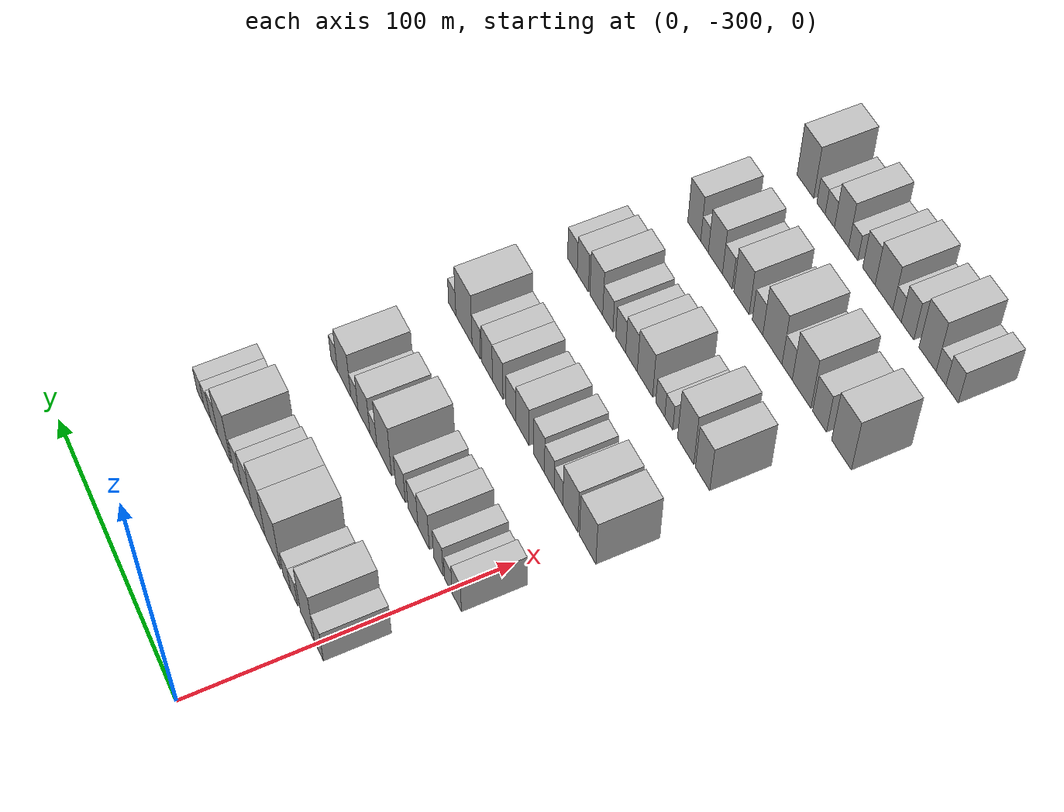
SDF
<sdf version="1.6">
 <world name="default">
  <model name="building_37">
   <static>1</static>
   <pose>50.0000 -302.4055 0 0.000000 0.000000 0.000000</pose>
   <link name="link">
    <pose>0 0 7.50 0 0 0</pose>
    <collision name="collision"><geometry><box><size>20.0000 6.4722 15.0000</size></box></geometry></collision>
    <visual name="visual">
     <cast_shadows>0</cast_shadows>
     <geometry><box><size>20.0000 6.4722 15.0000</size></box></geometry>
     <material>
      <script>
       <uri>model://HANNAS_wall/materials/scripts</uri>
       <uri>model://HANNAS_wall/materials/textures</uri>
       <name>vrc/HANNAS_wall</name>
      </script>
     </material>
    </visual>
   </link>
  </model>
  <model name="building_38">
   <static>1</static>
   <pose>50.0000 -294.0786 0 0.000000 0.000000 0.000000</pose>
   <link name="link">
    <pose>0 0 12.00 0 0 0</pose>
    <collision name="collision"><geometry><box><size>20.0000 10.1815 24.0000</size></box></geometry></collision>
    <visual name="visual">
     <cast_shadows>0</cast_shadows>
     <geometry><box><size>20.0000 10.1815 24.0000</size></box></geometry>
     <material>
      <script>
       <uri>model://HANNAS_wall/materials/scripts</uri>
       <uri>model://HANNAS_wall/materials/textures</uri>
       <name>vrc/HANNAS_wall</name>
      </script>
     </material>
    </visual>
   </link>
  </model>
  <model name="building_39">
   <static>1</static>
   <pose>50.0000 -284.3608 0 0.000000 0.000000 0.000000</pose>
   <link name="link">
    <pose>0 0 6.00 0 0 0</pose>
    <collision name="collision"><geometry><box><size>20.0000 5.2541 12.0000</size></box></geometry></collision>
    <visual name="visual">
     <cast_shadows>0</cast_shadows>
     <geometry><box><size>20.0000 5.2541 12.0000</size></box></geometry>
     <material>
      <script>
       <uri>model://HANNAS_wall/materials/scripts</uri>
       <uri>model://HANNAS_wall/materials/textures</uri>
       <name>vrc/HANNAS_wall</name>
      </script>
     </material>
    </visual>
   </link>
  </model>
  <model name="building_40">
   <static>1</static>
   <pose>50.0000 -278.8826 0 0.000000 0.000000 0.000000</pose>
   <link name="link">
    <pose>0 0 6.00 0 0 0</pose>
    <collision name="collision"><geometry><box><size>20.0000 5.7023 12.0000</size></box></geometry></collision>
    <visual name="visual">
     <cast_shadows>0</cast_shadows>
     <geometry><box><size>20.0000 5.7023 12.0000</size></box></geometry>
     <material>
      <script>
       <uri>model://HANNAS_wall/materials/scripts</uri>
       <uri>model://HANNAS_wall/materials/textures</uri>
       <name>vrc/HANNAS_wall</name>
      </script>
     </material>
    </visual>
   </link>
  </model>
  <model name="building_41">
   <static>1</static>
   <pose>50.0000 -268.1659 0 0.000000 0.000000 0.000000</pose>
   <link name="link">
    <pose>0 0 12.00 0 0 0</pose>
    <collision name="collision"><geometry><box><size>20.0000 11.7311 24.0000</size></box></geometry></collision>
    <visual name="visual">
     <cast_shadows>0</cast_shadows>
     <geometry><box><size>20.0000 11.7311 24.0000</size></box></geometry>
     <material>
      <script>
       <uri>model://HANNAS_wall/materials/scripts</uri>
       <uri>model://HANNAS_wall/materials/textures</uri>
       <name>vrc/HANNAS_wall</name>
      </script>
     </material>
    </visual>
   </link>
  </model>
  <model name="building_42">
   <static>1</static>
   <pose>50.0000 -257.3225 0 0.000000 0.000000 0.000000</pose>
   <link name="link">
    <pose>0 0 12.00 0 0 0</pose>
    <collision name="collision"><geometry><box><size>20.0000 9.9557 24.0000</size></box></geometry></collision>
    <visual name="visual">
     <cast_shadows>0</cast_shadows>
     <geometry><box><size>20.0000 9.9557 24.0000</size></box></geometry>
     <material>
      <script>
       <uri>model://HANNAS_wall/materials/scripts</uri>
       <uri>model://HANNAS_wall/materials/textures</uri>
       <name>vrc/HANNAS_wall</name>
      </script>
     </material>
    </visual>
   </link>
  </model>
  <model name="building_43">
   <static>1</static>
   <pose>50.0000 -248.1302 0 0.000000 0.000000 0.000000</pose>
   <link name="link">
    <pose>0 0 9.00 0 0 0</pose>
    <collision name="collision"><geometry><box><size>20.0000 8.4289 18.0000</size></box></geometry></collision>
    <visual name="visual">
     <cast_shadows>0</cast_shadows>
     <geometry><box><size>20.0000 8.4289 18.0000</size></box></geometry>
     <material>
      <script>
       <uri>model://HANNAS_wall/materials/scripts</uri>
       <uri>model://HANNAS_wall/materials/textures</uri>
       <name>vrc/HANNAS_wall</name>
      </script>
     </material>
    </visual>
   </link>
  </model>
  <model name="building_44">
   <static>1</static>
   <pose>50.0000 -240.6113 0 0.000000 0.000000 0.000000</pose>
   <link name="link">
    <pose>0 0 7.50 0 0 0</pose>
    <collision name="collision"><geometry><box><size>20.0000 6.6089 15.0000</size></box></geometry></collision>
    <visual name="visual">
     <cast_shadows>0</cast_shadows>
     <geometry><box><size>20.0000 6.6089 15.0000</size></box></geometry>
     <material>
      <script>
       <uri>model://HANNAS_wall/materials/scripts</uri>
       <uri>model://HANNAS_wall/materials/textures</uri>
       <name>vrc/HANNAS_wall</name>
      </script>
     </material>
    </visual>
   </link>
  </model>
  <model name="building_45">
   <static>1</static>
   <pose>50.0000 -230.1553 0 0.000000 0.000000 0.000000</pose>
   <link name="link">
    <pose>0 0 12.00 0 0 0</pose>
    <collision name="collision"><geometry><box><size>20.0000 10.3031 24.0000</size></box></geometry></collision>
    <visual name="visual">
     <cast_shadows>0</cast_shadows>
     <geometry><box><size>20.0000 10.3031 24.0000</size></box></geometry>
     <material>
      <script>
       <uri>model://HANNAS_wall/materials/scripts</uri>
       <uri>model://HANNAS_wall/materials/textures</uri>
       <name>vrc/HANNAS_wall</name>
      </script>
     </material>
    </visual>
   </link>
  </model>
  <model name="building_46">
   <static>1</static>
   <pose>50.0000 -221.9413 0 0.000000 0.000000 0.000000</pose>
   <link name="link">
    <pose>0 0 7.50 0 0 0</pose>
    <collision name="collision"><geometry><box><size>20.0000 6.1249 15.0000</size></box></geometry></collision>
    <visual name="visual">
     <cast_shadows>0</cast_shadows>
     <geometry><box><size>20.0000 6.1249 15.0000</size></box></geometry>
     <material>
      <script>
       <uri>model://HANNAS_wall/materials/scripts</uri>
       <uri>model://HANNAS_wall/materials/textures</uri>
       <name>vrc/HANNAS_wall</name>
      </script>
     </material>
    </visual>
   </link>
  </model>
  <model name="building_47">
   <static>1</static>
   <pose>50.0000 -216.0075 0 0.000000 0.000000 0.000000</pose>
   <link name="link">
    <pose>0 0 6.00 0 0 0</pose>
    <collision name="collision"><geometry><box><size>20.0000 5.7428 12.0000</size></box></geometry></collision>
    <visual name="visual">
     <cast_shadows>0</cast_shadows>
     <geometry><box><size>20.0000 5.7428 12.0000</size></box></geometry>
     <material>
      <script>
       <uri>model://HANNAS_wall/materials/scripts</uri>
       <uri>model://HANNAS_wall/materials/textures</uri>
       <name>vrc/HANNAS_wall</name>
      </script>
     </material>
    </visual>
   </link>
  </model>
  <model name="building_48">
   <static>1</static>
   <pose>50.0000 -210.2760 0 0.000000 0.000000 0.000000</pose>
   <link name="link">
    <pose>0 0 6.00 0 0 0</pose>
    <collision name="collision"><geometry><box><size>20.0000 5.7203 12.0000</size></box></geometry></collision>
    <visual name="visual">
     <cast_shadows>0</cast_shadows>
     <geometry><box><size>20.0000 5.7203 12.0000</size></box></geometry>
     <material>
      <script>
       <uri>model://HANNAS_wall/materials/scripts</uri>
       <uri>model://HANNAS_wall/materials/textures</uri>
       <name>vrc/HANNAS_wall</name>
      </script>
     </material>
    </visual>
   </link>
  </model>
  <model name="building_177">
   <static>1</static>
   <pose>90.0000 -304.5822 0 0.000000 0.000000 0.000000</pose>
   <link name="link">
    <pose>0 0 7.50 0 0 0</pose>
    <collision name="collision"><geometry><box><size>20.0000 6.2522 15.0000</size></box></geometry></collision>
    <visual name="visual">
     <cast_shadows>0</cast_shadows>
     <geometry><box><size>20.0000 6.2522 15.0000</size></box></geometry>
     <material>
      <script>
       <uri>model://HANNAS_wall/materials/scripts</uri>
       <uri>model://HANNAS_wall/materials/textures</uri>
       <name>vrc/HANNAS_wall</name>
      </script>
     </material>
    </visual>
   </link>
  </model>
  <model name="building_178">
   <static>1</static>
   <pose>90.0000 -298.9187 0 0.000000 0.000000 0.000000</pose>
   <link name="link">
    <pose>0 0 6.00 0 0 0</pose>
    <collision name="collision"><geometry><box><size>20.0000 5.0749 12.0000</size></box></geometry></collision>
    <visual name="visual">
     <cast_shadows>0</cast_shadows>
     <geometry><box><size>20.0000 5.0749 12.0000</size></box></geometry>
     <material>
      <script>
       <uri>model://HANNAS_wall/materials/scripts</uri>
       <uri>model://HANNAS_wall/materials/textures</uri>
       <name>vrc/HANNAS_wall</name>
      </script>
     </material>
    </visual>
   </link>
  </model>
  <model name="building_179">
   <static>1</static>
   <pose>90.0000 -292.1251 0 0.000000 0.000000 0.000000</pose>
   <link name="link">
    <pose>0 0 7.50 0 0 0</pose>
    <collision name="collision"><geometry><box><size>20.0000 6.5124 15.0000</size></box></geometry></collision>
    <visual name="visual">
     <cast_shadows>0</cast_shadows>
     <geometry><box><size>20.0000 6.5124 15.0000</size></box></geometry>
     <material>
      <script>
       <uri>model://HANNAS_wall/materials/scripts</uri>
       <uri>model://HANNAS_wall/materials/textures</uri>
       <name>vrc/HANNAS_wall</name>
      </script>
     </material>
    </visual>
   </link>
  </model>
  <model name="building_180">
   <static>1</static>
   <pose>90.0000 -281.8949 0 0.000000 0.000000 0.000000</pose>
   <link name="link">
    <pose>0 0 9.00 0 0 0</pose>
    <collision name="collision"><geometry><box><size>20.0000 7.9479 18.0000</size></box></geometry></collision>
    <visual name="visual">
     <cast_shadows>0</cast_shadows>
     <geometry><box><size>20.0000 7.9479 18.0000</size></box></geometry>
     <material>
      <script>
       <uri>model://HANNAS_wall/materials/scripts</uri>
       <uri>model://HANNAS_wall/materials/textures</uri>
       <name>vrc/HANNAS_wall</name>
      </script>
     </material>
    </visual>
   </link>
  </model>
  <model name="building_181">
   <static>1</static>
   <pose>90.0000 -274.4240 0 0.000000 0.000000 0.000000</pose>
   <link name="link">
    <pose>0 0 7.50 0 0 0</pose>
    <collision name="collision"><geometry><box><size>20.0000 6.9938 15.0000</size></box></geometry></collision>
    <visual name="visual">
     <cast_shadows>0</cast_shadows>
     <geometry><box><size>20.0000 6.9938 15.0000</size></box></geometry>
     <material>
      <script>
       <uri>model://HANNAS_wall/materials/scripts</uri>
       <uri>model://HANNAS_wall/materials/textures</uri>
       <name>vrc/HANNAS_wall</name>
      </script>
     </material>
    </visual>
   </link>
  </model>
  <model name="building_182">
   <static>1</static>
   <pose>90.0000 -265.4268 0 0.000000 0.000000 0.000000</pose>
   <link name="link">
    <pose>0 0 7.50 0 0 0</pose>
    <collision name="collision"><geometry><box><size>20.0000 7.0007 15.0000</size></box></geometry></collision>
    <visual name="visual">
     <cast_shadows>0</cast_shadows>
     <geometry><box><size>20.0000 7.0007 15.0000</size></box></geometry>
     <material>
      <script>
       <uri>model://HANNAS_wall/materials/scripts</uri>
       <uri>model://HANNAS_wall/materials/textures</uri>
       <name>vrc/HANNAS_wall</name>
      </script>
     </material>
    </visual>
   </link>
  </model>
  <model name="building_183">
   <static>1</static>
   <pose>90.0000 -253.6292 0 0.000000 0.000000 0.000000</pose>
   <link name="link">
    <pose>0 0 12.00 0 0 0</pose>
    <collision name="collision"><geometry><box><size>20.0000 10.5944 24.0000</size></box></geometry></collision>
    <visual name="visual">
     <cast_shadows>0</cast_shadows>
     <geometry><box><size>20.0000 10.5944 24.0000</size></box></geometry>
     <material>
      <script>
       <uri>model://HANNAS_wall/materials/scripts</uri>
       <uri>model://HANNAS_wall/materials/textures</uri>
       <name>vrc/HANNAS_wall</name>
      </script>
     </material>
    </visual>
   </link>
  </model>
  <model name="building_184">
   <static>1</static>
   <pose>90.0000 -245.7192 0 0.000000 0.000000 0.000000</pose>
   <link name="link">
    <pose>0 0 6.00 0 0 0</pose>
    <collision name="collision"><geometry><box><size>20.0000 5.2256 12.0000</size></box></geometry></collision>
    <visual name="visual">
     <cast_shadows>0</cast_shadows>
     <geometry><box><size>20.0000 5.2256 12.0000</size></box></geometry>
     <material>
      <script>
       <uri>model://HANNAS_wall/materials/scripts</uri>
       <uri>model://HANNAS_wall/materials/textures</uri>
       <name>vrc/HANNAS_wall</name>
      </script>
     </material>
    </visual>
   </link>
  </model>
  <model name="building_185">
   <static>1</static>
   <pose>90.0000 -238.6615 0 0.000000 0.000000 0.000000</pose>
   <link name="link">
    <pose>0 0 9.00 0 0 0</pose>
    <collision name="collision"><geometry><box><size>20.0000 8.8899 18.0000</size></box></geometry></collision>
    <visual name="visual">
     <cast_shadows>0</cast_shadows>
     <geometry><box><size>20.0000 8.8899 18.0000</size></box></geometry>
     <material>
      <script>
       <uri>model://HANNAS_wall/materials/scripts</uri>
       <uri>model://HANNAS_wall/materials/textures</uri>
       <name>vrc/HANNAS_wall</name>
      </script>
     </material>
    </visual>
   </link>
  </model>
  <model name="building_186">
   <static>1</static>
   <pose>90.0000 -231.4630 0 0.000000 0.000000 0.000000</pose>
   <link name="link">
    <pose>0 0 6.00 0 0 0</pose>
    <collision name="collision"><geometry><box><size>20.0000 5.5070 12.0000</size></box></geometry></collision>
    <visual name="visual">
     <cast_shadows>0</cast_shadows>
     <geometry><box><size>20.0000 5.5070 12.0000</size></box></geometry>
     <material>
      <script>
       <uri>model://HANNAS_wall/materials/scripts</uri>
       <uri>model://HANNAS_wall/materials/textures</uri>
       <name>vrc/HANNAS_wall</name>
      </script>
     </material>
    </visual>
   </link>
  </model>
  <model name="building_187">
   <static>1</static>
   <pose>90.0000 -223.5829 0 0.000000 0.000000 0.000000</pose>
   <link name="link">
    <pose>0 0 10.50 0 0 0</pose>
    <collision name="collision"><geometry><box><size>20.0000 10.2532 21.0000</size></box></geometry></collision>
    <visual name="visual">
     <cast_shadows>0</cast_shadows>
     <geometry><box><size>20.0000 10.2532 21.0000</size></box></geometry>
     <material>
      <script>
       <uri>model://HANNAS_wall/materials/scripts</uri>
       <uri>model://HANNAS_wall/materials/textures</uri>
       <name>vrc/HANNAS_wall</name>
      </script>
     </material>
    </visual>
   </link>
  </model>
  <model name="building_188">
   <static>1</static>
   <pose>90.0000 -215.9018 0 0.000000 0.000000 0.000000</pose>
   <link name="link">
    <pose>0 0 6.00 0 0 0</pose>
    <collision name="collision"><geometry><box><size>20.0000 5.1090 12.0000</size></box></geometry></collision>
    <visual name="visual">
     <cast_shadows>0</cast_shadows>
     <geometry><box><size>20.0000 5.1090 12.0000</size></box></geometry>
     <material>
      <script>
       <uri>model://HANNAS_wall/materials/scripts</uri>
       <uri>model://HANNAS_wall/materials/textures</uri>
       <name>vrc/HANNAS_wall</name>
      </script>
     </material>
    </visual>
   </link>
  </model>
  <model name="building_314">
   <static>1</static>
   <pose>130.0000 -304.6947 0 0.000000 0.000000 0.000000</pose>
   <link name="link">
    <pose>0 0 10.50 0 0 0</pose>
    <collision name="collision"><geometry><box><size>20.0000 10.4292 21.0000</size></box></geometry></collision>
    <visual name="visual">
     <cast_shadows>0</cast_shadows>
     <geometry><box><size>20.0000 10.4292 21.0000</size></box></geometry>
     <material>
      <script>
       <uri>model://HANNAS_wall/materials/scripts</uri>
       <uri>model://HANNAS_wall/materials/textures</uri>
       <name>vrc/HANNAS_wall</name>
      </script>
     </material>
    </visual>
   </link>
  </model>
  <model name="building_315">
   <static>1</static>
   <pose>130.0000 -293.5910 0 0.000000 0.000000 0.000000</pose>
   <link name="link">
    <pose>0 0 10.50 0 0 0</pose>
    <collision name="collision"><geometry><box><size>20.0000 9.7782 21.0000</size></box></geometry></collision>
    <visual name="visual">
     <cast_shadows>0</cast_shadows>
     <geometry><box><size>20.0000 9.7782 21.0000</size></box></geometry>
     <material>
      <script>
       <uri>model://HANNAS_wall/materials/scripts</uri>
       <uri>model://HANNAS_wall/materials/textures</uri>
       <name>vrc/HANNAS_wall</name>
      </script>
     </material>
    </visual>
   </link>
  </model>
  <model name="building_316">
   <static>1</static>
   <pose>130.0000 -285.8465 0 0.000000 0.000000 0.000000</pose>
   <link name="link">
    <pose>0 0 6.00 0 0 0</pose>
    <collision name="collision"><geometry><box><size>20.0000 5.7107 12.0000</size></box></geometry></collision>
    <visual name="visual">
     <cast_shadows>0</cast_shadows>
     <geometry><box><size>20.0000 5.7107 12.0000</size></box></geometry>
     <material>
      <script>
       <uri>model://HANNAS_wall/materials/scripts</uri>
       <uri>model://HANNAS_wall/materials/textures</uri>
       <name>vrc/HANNAS_wall</name>
      </script>
     </material>
    </visual>
   </link>
  </model>
  <model name="building_317">
   <static>1</static>
   <pose>130.0000 -279.8014 0 0.000000 0.000000 0.000000</pose>
   <link name="link">
    <pose>0 0 7.50 0 0 0</pose>
    <collision name="collision"><geometry><box><size>20.0000 6.3797 15.0000</size></box></geometry></collision>
    <visual name="visual">
     <cast_shadows>0</cast_shadows>
     <geometry><box><size>20.0000 6.3797 15.0000</size></box></geometry>
     <material>
      <script>
       <uri>model://HANNAS_wall/materials/scripts</uri>
       <uri>model://HANNAS_wall/materials/textures</uri>
       <name>vrc/HANNAS_wall</name>
      </script>
     </material>
    </visual>
   </link>
  </model>
  <model name="building_318">
   <static>1</static>
   <pose>130.0000 -272.9225 0 0.000000 0.000000 0.000000</pose>
   <link name="link">
    <pose>0 0 9.00 0 0 0</pose>
    <collision name="collision"><geometry><box><size>20.0000 7.3782 18.0000</size></box></geometry></collision>
    <visual name="visual">
     <cast_shadows>0</cast_shadows>
     <geometry><box><size>20.0000 7.3782 18.0000</size></box></geometry>
     <material>
      <script>
       <uri>model://HANNAS_wall/materials/scripts</uri>
       <uri>model://HANNAS_wall/materials/textures</uri>
       <name>vrc/HANNAS_wall</name>
      </script>
     </material>
    </visual>
   </link>
  </model>
  <model name="building_319">
   <static>1</static>
   <pose>130.0000 -261.7606 0 0.000000 0.000000 0.000000</pose>
   <link name="link">
    <pose>0 0 9.00 0 0 0</pose>
    <collision name="collision"><geometry><box><size>20.0000 8.9455 18.0000</size></box></geometry></collision>
    <visual name="visual">
     <cast_shadows>0</cast_shadows>
     <geometry><box><size>20.0000 8.9455 18.0000</size></box></geometry>
     <material>
      <script>
       <uri>model://HANNAS_wall/materials/scripts</uri>
       <uri>model://HANNAS_wall/materials/textures</uri>
       <name>vrc/HANNAS_wall</name>
      </script>
     </material>
    </visual>
   </link>
  </model>
  <model name="building_320">
   <static>1</static>
   <pose>130.0000 -253.8197 0 0.000000 0.000000 0.000000</pose>
   <link name="link">
    <pose>0 0 7.50 0 0 0</pose>
    <collision name="collision"><geometry><box><size>20.0000 6.9364 15.0000</size></box></geometry></collision>
    <visual name="visual">
     <cast_shadows>0</cast_shadows>
     <geometry><box><size>20.0000 6.9364 15.0000</size></box></geometry>
     <material>
      <script>
       <uri>model://HANNAS_wall/materials/scripts</uri>
       <uri>model://HANNAS_wall/materials/textures</uri>
       <name>vrc/HANNAS_wall</name>
      </script>
     </material>
    </visual>
   </link>
  </model>
  <model name="building_321">
   <static>1</static>
   <pose>130.0000 -244.6872 0 0.000000 0.000000 0.000000</pose>
   <link name="link">
    <pose>0 0 9.00 0 0 0</pose>
    <collision name="collision"><geometry><box><size>20.0000 7.3285 18.0000</size></box></geometry></collision>
    <visual name="visual">
     <cast_shadows>0</cast_shadows>
     <geometry><box><size>20.0000 7.3285 18.0000</size></box></geometry>
     <material>
      <script>
       <uri>model://HANNAS_wall/materials/scripts</uri>
       <uri>model://HANNAS_wall/materials/textures</uri>
       <name>vrc/HANNAS_wall</name>
      </script>
     </material>
    </visual>
   </link>
  </model>
  <model name="building_322">
   <static>1</static>
   <pose>130.0000 -237.2401 0 0.000000 0.000000 0.000000</pose>
   <link name="link">
    <pose>0 0 9.00 0 0 0</pose>
    <collision name="collision"><geometry><box><size>20.0000 7.5659 18.0000</size></box></geometry></collision>
    <visual name="visual">
     <cast_shadows>0</cast_shadows>
     <geometry><box><size>20.0000 7.5659 18.0000</size></box></geometry>
     <material>
      <script>
       <uri>model://HANNAS_wall/materials/scripts</uri>
       <uri>model://HANNAS_wall/materials/textures</uri>
       <name>vrc/HANNAS_wall</name>
      </script>
     </material>
    </visual>
   </link>
  </model>
  <model name="building_323">
   <static>1</static>
   <pose>130.0000 -229.4559 0 0.000000 0.000000 0.000000</pose>
   <link name="link">
    <pose>0 0 7.50 0 0 0</pose>
    <collision name="collision"><geometry><box><size>20.0000 6.0024 15.0000</size></box></geometry></collision>
    <visual name="visual">
     <cast_shadows>0</cast_shadows>
     <geometry><box><size>20.0000 6.0024 15.0000</size></box></geometry>
     <material>
      <script>
       <uri>model://HANNAS_wall/materials/scripts</uri>
       <uri>model://HANNAS_wall/materials/textures</uri>
       <name>vrc/HANNAS_wall</name>
      </script>
     </material>
    </visual>
   </link>
  </model>
  <model name="building_324">
   <static>1</static>
   <pose>130.0000 -220.5386 0 0.000000 0.000000 0.000000</pose>
   <link name="link">
    <pose>0 0 12.00 0 0 0</pose>
    <collision name="collision"><geometry><box><size>20.0000 11.8323 24.0000</size></box></geometry></collision>
    <visual name="visual">
     <cast_shadows>0</cast_shadows>
     <geometry><box><size>20.0000 11.8323 24.0000</size></box></geometry>
     <material>
      <script>
       <uri>model://HANNAS_wall/materials/scripts</uri>
       <uri>model://HANNAS_wall/materials/textures</uri>
       <name>vrc/HANNAS_wall</name>
      </script>
     </material>
    </visual>
   </link>
  </model>
  <model name="building_325">
   <static>1</static>
   <pose>130.0000 -211.9430 0 0.000000 0.000000 0.000000</pose>
   <link name="link">
    <pose>0 0 6.00 0 0 0</pose>
    <collision name="collision"><geometry><box><size>20.0000 5.3591 12.0000</size></box></geometry></collision>
    <visual name="visual">
     <cast_shadows>0</cast_shadows>
     <geometry><box><size>20.0000 5.3591 12.0000</size></box></geometry>
     <material>
      <script>
       <uri>model://HANNAS_wall/materials/scripts</uri>
       <uri>model://HANNAS_wall/materials/textures</uri>
       <name>vrc/HANNAS_wall</name>
      </script>
     </material>
    </visual>
   </link>
  </model>
  <model name="building_455">
   <static>1</static>
   <pose>170.0000 -297.6164 0 0.000000 0.000000 0.000000</pose>
   <link name="link">
    <pose>0 0 10.50 0 0 0</pose>
    <collision name="collision"><geometry><box><size>20.0000 8.7821 21.0000</size></box></geometry></collision>
    <visual name="visual">
     <cast_shadows>0</cast_shadows>
     <geometry><box><size>20.0000 8.7821 21.0000</size></box></geometry>
     <material>
      <script>
       <uri>model://HANNAS_wall/materials/scripts</uri>
       <uri>model://HANNAS_wall/materials/textures</uri>
       <name>vrc/HANNAS_wall</name>
      </script>
     </material>
    </visual>
   </link>
  </model>
  <model name="building_456">
   <static>1</static>
   <pose>170.0000 -287.1650 0 0.000000 0.000000 0.000000</pose>
   <link name="link">
    <pose>0 0 12.00 0 0 0</pose>
    <collision name="collision"><geometry><box><size>20.0000 10.1206 24.0000</size></box></geometry></collision>
    <visual name="visual">
     <cast_shadows>0</cast_shadows>
     <geometry><box><size>20.0000 10.1206 24.0000</size></box></geometry>
     <material>
      <script>
       <uri>model://HANNAS_wall/materials/scripts</uri>
       <uri>model://HANNAS_wall/materials/textures</uri>
       <name>vrc/HANNAS_wall</name>
      </script>
     </material>
    </visual>
   </link>
  </model>
  <model name="building_457">
   <static>1</static>
   <pose>170.0000 -276.5838 0 0.000000 0.000000 0.000000</pose>
   <link name="link">
    <pose>0 0 6.00 0 0 0</pose>
    <collision name="collision"><geometry><box><size>20.0000 5.0418 12.0000</size></box></geometry></collision>
    <visual name="visual">
     <cast_shadows>0</cast_shadows>
     <geometry><box><size>20.0000 5.0418 12.0000</size></box></geometry>
     <material>
      <script>
       <uri>model://HANNAS_wall/materials/scripts</uri>
       <uri>model://HANNAS_wall/materials/textures</uri>
       <name>vrc/HANNAS_wall</name>
      </script>
     </material>
    </visual>
   </link>
  </model>
  <model name="building_458">
   <static>1</static>
   <pose>170.0000 -271.1706 0 0.000000 0.000000 0.000000</pose>
   <link name="link">
    <pose>0 0 6.00 0 0 0</pose>
    <collision name="collision"><geometry><box><size>20.0000 5.7845 12.0000</size></box></geometry></collision>
    <visual name="visual">
     <cast_shadows>0</cast_shadows>
     <geometry><box><size>20.0000 5.7845 12.0000</size></box></geometry>
     <material>
      <script>
       <uri>model://HANNAS_wall/materials/scripts</uri>
       <uri>model://HANNAS_wall/materials/textures</uri>
       <name>vrc/HANNAS_wall</name>
      </script>
     </material>
    </visual>
   </link>
  </model>
  <model name="building_459">
   <static>1</static>
   <pose>170.0000 -261.3050 0 0.000000 0.000000 0.000000</pose>
   <link name="link">
    <pose>0 0 10.50 0 0 0</pose>
    <collision name="collision"><geometry><box><size>20.0000 9.9468 21.0000</size></box></geometry></collision>
    <visual name="visual">
     <cast_shadows>0</cast_shadows>
     <geometry><box><size>20.0000 9.9468 21.0000</size></box></geometry>
     <material>
      <script>
       <uri>model://HANNAS_wall/materials/scripts</uri>
       <uri>model://HANNAS_wall/materials/textures</uri>
       <name>vrc/HANNAS_wall</name>
      </script>
     </material>
    </visual>
   </link>
  </model>
  <model name="building_460">
   <static>1</static>
   <pose>170.0000 -252.5022 0 0.000000 0.000000 0.000000</pose>
   <link name="link">
    <pose>0 0 9.00 0 0 0</pose>
    <collision name="collision"><geometry><box><size>20.0000 7.6588 18.0000</size></box></geometry></collision>
    <visual name="visual">
     <cast_shadows>0</cast_shadows>
     <geometry><box><size>20.0000 7.6588 18.0000</size></box></geometry>
     <material>
      <script>
       <uri>model://HANNAS_wall/materials/scripts</uri>
       <uri>model://HANNAS_wall/materials/textures</uri>
       <name>vrc/HANNAS_wall</name>
      </script>
     </material>
    </visual>
   </link>
  </model>
  <model name="building_461">
   <static>1</static>
   <pose>170.0000 -245.4043 0 0.000000 0.000000 0.000000</pose>
   <link name="link">
    <pose>0 0 7.50 0 0 0</pose>
    <collision name="collision"><geometry><box><size>20.0000 6.5369 15.0000</size></box></geometry></collision>
    <visual name="visual">
     <cast_shadows>0</cast_shadows>
     <geometry><box><size>20.0000 6.5369 15.0000</size></box></geometry>
     <material>
      <script>
       <uri>model://HANNAS_wall/materials/scripts</uri>
       <uri>model://HANNAS_wall/materials/textures</uri>
       <name>vrc/HANNAS_wall</name>
      </script>
     </material>
    </visual>
   </link>
  </model>
  <model name="building_462">
   <static>1</static>
   <pose>170.0000 -236.7102 0 0.000000 0.000000 0.000000</pose>
   <link name="link">
    <pose>0 0 7.50 0 0 0</pose>
    <collision name="collision"><geometry><box><size>20.0000 6.8512 15.0000</size></box></geometry></collision>
    <visual name="visual">
     <cast_shadows>0</cast_shadows>
     <geometry><box><size>20.0000 6.8512 15.0000</size></box></geometry>
     <material>
      <script>
       <uri>model://HANNAS_wall/materials/scripts</uri>
       <uri>model://HANNAS_wall/materials/textures</uri>
       <name>vrc/HANNAS_wall</name>
      </script>
     </material>
    </visual>
   </link>
  </model>
  <model name="building_463">
   <static>1</static>
   <pose>170.0000 -228.8940 0 0.000000 0.000000 0.000000</pose>
   <link name="link">
    <pose>0 0 10.50 0 0 0</pose>
    <collision name="collision"><geometry><box><size>20.0000 8.7812 21.0000</size></box></geometry></collision>
    <visual name="visual">
     <cast_shadows>0</cast_shadows>
     <geometry><box><size>20.0000 8.7812 21.0000</size></box></geometry>
     <material>
      <script>
       <uri>model://HANNAS_wall/materials/scripts</uri>
       <uri>model://HANNAS_wall/materials/textures</uri>
       <name>vrc/HANNAS_wall</name>
      </script>
     </material>
    </visual>
   </link>
  </model>
  <model name="building_464">
   <static>1</static>
   <pose>170.0000 -219.6351 0 0.000000 0.000000 0.000000</pose>
   <link name="link">
    <pose>0 0 9.00 0 0 0</pose>
    <collision name="collision"><geometry><box><size>20.0000 7.7365 18.0000</size></box></geometry></collision>
    <visual name="visual">
     <cast_shadows>0</cast_shadows>
     <geometry><box><size>20.0000 7.7365 18.0000</size></box></geometry>
     <material>
      <script>
       <uri>model://HANNAS_wall/materials/scripts</uri>
       <uri>model://HANNAS_wall/materials/textures</uri>
       <name>vrc/HANNAS_wall</name>
      </script>
     </material>
    </visual>
   </link>
  </model>
  <model name="building_465">
   <static>1</static>
   <pose>170.0000 -212.4235 0 0.000000 0.000000 0.000000</pose>
   <link name="link">
    <pose>0 0 7.50 0 0 0</pose>
    <collision name="collision"><geometry><box><size>20.0000 6.6867 15.0000</size></box></geometry></collision>
    <visual name="visual">
     <cast_shadows>0</cast_shadows>
     <geometry><box><size>20.0000 6.6867 15.0000</size></box></geometry>
     <material>
      <script>
       <uri>model://HANNAS_wall/materials/scripts</uri>
       <uri>model://HANNAS_wall/materials/textures</uri>
       <name>vrc/HANNAS_wall</name>
      </script>
     </material>
    </visual>
   </link>
  </model>
  <model name="building_602">
   <static>1</static>
   <pose>210.0000 -307.4002 0 0.000000 0.000000 0.000000</pose>
   <link name="link">
    <pose>0 0 12.00 0 0 0</pose>
    <collision name="collision"><geometry><box><size>20.0000 11.4080 24.0000</size></box></geometry></collision>
    <visual name="visual">
     <cast_shadows>0</cast_shadows>
     <geometry><box><size>20.0000 11.4080 24.0000</size></box></geometry>
     <material>
      <script>
       <uri>model://HANNAS_wall/materials/scripts</uri>
       <uri>model://HANNAS_wall/materials/textures</uri>
       <name>vrc/HANNAS_wall</name>
      </script>
     </material>
    </visual>
   </link>
  </model>
  <model name="building_603">
   <static>1</static>
   <pose>210.0000 -294.6233 0 0.000000 0.000000 0.000000</pose>
   <link name="link">
    <pose>0 0 9.00 0 0 0</pose>
    <collision name="collision"><geometry><box><size>20.0000 8.1457 18.0000</size></box></geometry></collision>
    <visual name="visual">
     <cast_shadows>0</cast_shadows>
     <geometry><box><size>20.0000 8.1457 18.0000</size></box></geometry>
     <material>
      <script>
       <uri>model://HANNAS_wall/materials/scripts</uri>
       <uri>model://HANNAS_wall/materials/textures</uri>
       <name>vrc/HANNAS_wall</name>
      </script>
     </material>
    </visual>
   </link>
  </model>
  <model name="building_604">
   <static>1</static>
   <pose>210.0000 -283.9683 0 0.000000 0.000000 0.000000</pose>
   <link name="link">
    <pose>0 0 12.00 0 0 0</pose>
    <collision name="collision"><geometry><box><size>20.0000 11.1643 24.0000</size></box></geometry></collision>
    <visual name="visual">
     <cast_shadows>0</cast_shadows>
     <geometry><box><size>20.0000 11.1643 24.0000</size></box></geometry>
     <material>
      <script>
       <uri>model://HANNAS_wall/materials/scripts</uri>
       <uri>model://HANNAS_wall/materials/textures</uri>
       <name>vrc/HANNAS_wall</name>
      </script>
     </material>
    </visual>
   </link>
  </model>
  <model name="building_605">
   <static>1</static>
   <pose>210.0000 -275.2599 0 0.000000 0.000000 0.000000</pose>
   <link name="link">
    <pose>0 0 7.50 0 0 0</pose>
    <collision name="collision"><geometry><box><size>20.0000 6.2525 15.0000</size></box></geometry></collision>
    <visual name="visual">
     <cast_shadows>0</cast_shadows>
     <geometry><box><size>20.0000 6.2525 15.0000</size></box></geometry>
     <material>
      <script>
       <uri>model://HANNAS_wall/materials/scripts</uri>
       <uri>model://HANNAS_wall/materials/textures</uri>
       <name>vrc/HANNAS_wall</name>
      </script>
     </material>
    </visual>
   </link>
  </model>
  <model name="building_606">
   <static>1</static>
   <pose>210.0000 -266.2254 0 0.000000 0.000000 0.000000</pose>
   <link name="link">
    <pose>0 0 12.00 0 0 0</pose>
    <collision name="collision"><geometry><box><size>20.0000 11.8166 24.0000</size></box></geometry></collision>
    <visual name="visual">
     <cast_shadows>0</cast_shadows>
     <geometry><box><size>20.0000 11.8166 24.0000</size></box></geometry>
     <material>
      <script>
       <uri>model://HANNAS_wall/materials/scripts</uri>
       <uri>model://HANNAS_wall/materials/textures</uri>
       <name>vrc/HANNAS_wall</name>
      </script>
     </material>
    </visual>
   </link>
  </model>
  <model name="building_607">
   <static>1</static>
   <pose>210.0000 -257.0607 0 0.000000 0.000000 0.000000</pose>
   <link name="link">
    <pose>0 0 7.50 0 0 0</pose>
    <collision name="collision"><geometry><box><size>20.0000 6.5128 15.0000</size></box></geometry></collision>
    <visual name="visual">
     <cast_shadows>0</cast_shadows>
     <geometry><box><size>20.0000 6.5128 15.0000</size></box></geometry>
     <material>
      <script>
       <uri>model://HANNAS_wall/materials/scripts</uri>
       <uri>model://HANNAS_wall/materials/textures</uri>
       <name>vrc/HANNAS_wall</name>
      </script>
     </material>
    </visual>
   </link>
  </model>
  <model name="building_608">
   <static>1</static>
   <pose>210.0000 -246.9375 0 0.000000 0.000000 0.000000</pose>
   <link name="link">
    <pose>0 0 10.50 0 0 0</pose>
    <collision name="collision"><geometry><box><size>20.0000 9.7337 21.0000</size></box></geometry></collision>
    <visual name="visual">
     <cast_shadows>0</cast_shadows>
     <geometry><box><size>20.0000 9.7337 21.0000</size></box></geometry>
     <material>
      <script>
       <uri>model://HANNAS_wall/materials/scripts</uri>
       <uri>model://HANNAS_wall/materials/textures</uri>
       <name>vrc/HANNAS_wall</name>
      </script>
     </material>
    </visual>
   </link>
  </model>
  <model name="building_609">
   <static>1</static>
   <pose>210.0000 -237.9161 0 0.000000 0.000000 0.000000</pose>
   <link name="link">
    <pose>0 0 7.50 0 0 0</pose>
    <collision name="collision"><geometry><box><size>20.0000 6.3091 15.0000</size></box></geometry></collision>
    <visual name="visual">
     <cast_shadows>0</cast_shadows>
     <geometry><box><size>20.0000 6.3091 15.0000</size></box></geometry>
     <material>
      <script>
       <uri>model://HANNAS_wall/materials/scripts</uri>
       <uri>model://HANNAS_wall/materials/textures</uri>
       <name>vrc/HANNAS_wall</name>
      </script>
     </material>
    </visual>
   </link>
  </model>
  <model name="building_610">
   <static>1</static>
   <pose>210.0000 -230.1527 0 0.000000 0.000000 0.000000</pose>
   <link name="link">
    <pose>0 0 10.50 0 0 0</pose>
    <collision name="collision"><geometry><box><size>20.0000 9.2178 21.0000</size></box></geometry></collision>
    <visual name="visual">
     <cast_shadows>0</cast_shadows>
     <geometry><box><size>20.0000 9.2178 21.0000</size></box></geometry>
     <material>
      <script>
       <uri>model://HANNAS_wall/materials/scripts</uri>
       <uri>model://HANNAS_wall/materials/textures</uri>
       <name>vrc/HANNAS_wall</name>
      </script>
     </material>
    </visual>
   </link>
  </model>
  <model name="building_611">
   <static>1</static>
   <pose>210.0000 -223.0367 0 0.000000 0.000000 0.000000</pose>
   <link name="link">
    <pose>0 0 6.00 0 0 0</pose>
    <collision name="collision"><geometry><box><size>20.0000 5.0141 12.0000</size></box></geometry></collision>
    <visual name="visual">
     <cast_shadows>0</cast_shadows>
     <geometry><box><size>20.0000 5.0141 12.0000</size></box></geometry>
     <material>
      <script>
       <uri>model://HANNAS_wall/materials/scripts</uri>
       <uri>model://HANNAS_wall/materials/textures</uri>
       <name>vrc/HANNAS_wall</name>
      </script>
     </material>
    </visual>
   </link>
  </model>
  <model name="building_612">
   <static>1</static>
   <pose>210.0000 -216.2485 0 0.000000 0.000000 0.000000</pose>
   <link name="link">
    <pose>0 0 10.50 0 0 0</pose>
    <collision name="collision"><geometry><box><size>20.0000 8.5624 21.0000</size></box></geometry></collision>
    <visual name="visual">
     <cast_shadows>0</cast_shadows>
     <geometry><box><size>20.0000 8.5624 21.0000</size></box></geometry>
     <material>
      <script>
       <uri>model://HANNAS_wall/materials/scripts</uri>
       <uri>model://HANNAS_wall/materials/textures</uri>
       <name>vrc/HANNAS_wall</name>
      </script>
     </material>
    </visual>
   </link>
  </model>
  <model name="building_740">
   <static>1</static>
   <pose>250.0000 -302.7180 0 0.000000 0.000000 0.000000</pose>
   <link name="link">
    <pose>0 0 7.50 0 0 0</pose>
    <collision name="collision"><geometry><box><size>20.0000 6.9357 15.0000</size></box></geometry></collision>
    <visual name="visual">
     <cast_shadows>0</cast_shadows>
     <geometry><box><size>20.0000 6.9357 15.0000</size></box></geometry>
     <material>
      <script>
       <uri>model://HANNAS_wall/materials/scripts</uri>
       <uri>model://HANNAS_wall/materials/textures</uri>
       <name>vrc/HANNAS_wall</name>
      </script>
     </material>
    </visual>
   </link>
  </model>
  <model name="building_741">
   <static>1</static>
   <pose>250.0000 -296.4886 0 0.000000 0.000000 0.000000</pose>
   <link name="link">
    <pose>0 0 6.00 0 0 0</pose>
    <collision name="collision"><geometry><box><size>20.0000 5.5230 12.0000</size></box></geometry></collision>
    <visual name="visual">
     <cast_shadows>0</cast_shadows>
     <geometry><box><size>20.0000 5.5230 12.0000</size></box></geometry>
     <material>
      <script>
       <uri>model://HANNAS_wall/materials/scripts</uri>
       <uri>model://HANNAS_wall/materials/textures</uri>
       <name>vrc/HANNAS_wall</name>
      </script>
     </material>
    </visual>
   </link>
  </model>
  <model name="building_742">
   <static>1</static>
   <pose>250.0000 -288.8447 0 0.000000 0.000000 0.000000</pose>
   <link name="link">
    <pose>0 0 12.00 0 0 0</pose>
    <collision name="collision"><geometry><box><size>20.0000 9.7648 24.0000</size></box></geometry></collision>
    <visual name="visual">
     <cast_shadows>0</cast_shadows>
     <geometry><box><size>20.0000 9.7648 24.0000</size></box></geometry>
     <material>
      <script>
       <uri>model://HANNAS_wall/materials/scripts</uri>
       <uri>model://HANNAS_wall/materials/textures</uri>
       <name>vrc/HANNAS_wall</name>
      </script>
     </material>
    </visual>
   </link>
  </model>
  <model name="building_743">
   <static>1</static>
   <pose>250.0000 -277.3334 0 0.000000 0.000000 0.000000</pose>
   <link name="link">
    <pose>0 0 9.00 0 0 0</pose>
    <collision name="collision"><geometry><box><size>20.0000 7.2577 18.0000</size></box></geometry></collision>
    <visual name="visual">
     <cast_shadows>0</cast_shadows>
     <geometry><box><size>20.0000 7.2577 18.0000</size></box></geometry>
     <material>
      <script>
       <uri>model://HANNAS_wall/materials/scripts</uri>
       <uri>model://HANNAS_wall/materials/textures</uri>
       <name>vrc/HANNAS_wall</name>
      </script>
     </material>
    </visual>
   </link>
  </model>
  <model name="building_744">
   <static>1</static>
   <pose>250.0000 -271.2002 0 0.000000 0.000000 0.000000</pose>
   <link name="link">
    <pose>0 0 6.00 0 0 0</pose>
    <collision name="collision"><geometry><box><size>20.0000 5.0086 12.0000</size></box></geometry></collision>
    <visual name="visual">
     <cast_shadows>0</cast_shadows>
     <geometry><box><size>20.0000 5.0086 12.0000</size></box></geometry>
     <material>
      <script>
       <uri>model://HANNAS_wall/materials/scripts</uri>
       <uri>model://HANNAS_wall/materials/textures</uri>
       <name>vrc/HANNAS_wall</name>
      </script>
     </material>
    </visual>
   </link>
  </model>
  <model name="building_745">
   <static>1</static>
   <pose>250.0000 -263.4482 0 0.000000 0.000000 0.000000</pose>
   <link name="link">
    <pose>0 0 10.50 0 0 0</pose>
    <collision name="collision"><geometry><box><size>20.0000 10.4954 21.0000</size></box></geometry></collision>
    <visual name="visual">
     <cast_shadows>0</cast_shadows>
     <geometry><box><size>20.0000 10.4954 21.0000</size></box></geometry>
     <material>
      <script>
       <uri>model://HANNAS_wall/materials/scripts</uri>
       <uri>model://HANNAS_wall/materials/textures</uri>
       <name>vrc/HANNAS_wall</name>
      </script>
     </material>
    </visual>
   </link>
  </model>
  <model name="building_746">
   <static>1</static>
   <pose>250.0000 -254.4654 0 0.000000 0.000000 0.000000</pose>
   <link name="link">
    <pose>0 0 9.00 0 0 0</pose>
    <collision name="collision"><geometry><box><size>20.0000 7.4703 18.0000</size></box></geometry></collision>
    <visual name="visual">
     <cast_shadows>0</cast_shadows>
     <geometry><box><size>20.0000 7.4703 18.0000</size></box></geometry>
     <material>
      <script>
       <uri>model://HANNAS_wall/materials/scripts</uri>
       <uri>model://HANNAS_wall/materials/textures</uri>
       <name>vrc/HANNAS_wall</name>
      </script>
     </material>
    </visual>
   </link>
  </model>
  <model name="building_747">
   <static>1</static>
   <pose>250.0000 -244.9133 0 0.000000 0.000000 0.000000</pose>
   <link name="link">
    <pose>0 0 6.00 0 0 0</pose>
    <collision name="collision"><geometry><box><size>20.0000 5.6338 12.0000</size></box></geometry></collision>
    <visual name="visual">
     <cast_shadows>0</cast_shadows>
     <geometry><box><size>20.0000 5.6338 12.0000</size></box></geometry>
     <material>
      <script>
       <uri>model://HANNAS_wall/materials/scripts</uri>
       <uri>model://HANNAS_wall/materials/textures</uri>
       <name>vrc/HANNAS_wall</name>
      </script>
     </material>
    </visual>
   </link>
  </model>
  <model name="building_748">
   <static>1</static>
   <pose>250.0000 -237.7441 0 0.000000 0.000000 0.000000</pose>
   <link name="link">
    <pose>0 0 10.50 0 0 0</pose>
    <collision name="collision"><geometry><box><size>20.0000 8.7046 21.0000</size></box></geometry></collision>
    <visual name="visual">
     <cast_shadows>0</cast_shadows>
     <geometry><box><size>20.0000 8.7046 21.0000</size></box></geometry>
     <material>
      <script>
       <uri>model://HANNAS_wall/materials/scripts</uri>
       <uri>model://HANNAS_wall/materials/textures</uri>
       <name>vrc/HANNAS_wall</name>
      </script>
     </material>
    </visual>
   </link>
  </model>
  <model name="building_749">
   <static>1</static>
   <pose>250.0000 -230.4937 0 0.000000 0.000000 0.000000</pose>
   <link name="link">
    <pose>0 0 6.00 0 0 0</pose>
    <collision name="collision"><geometry><box><size>20.0000 5.7962 12.0000</size></box></geometry></collision>
    <visual name="visual">
     <cast_shadows>0</cast_shadows>
     <geometry><box><size>20.0000 5.7962 12.0000</size></box></geometry>
     <material>
      <script>
       <uri>model://HANNAS_wall/materials/scripts</uri>
       <uri>model://HANNAS_wall/materials/textures</uri>
       <name>vrc/HANNAS_wall</name>
      </script>
     </material>
    </visual>
   </link>
  </model>
  <model name="building_750">
   <static>1</static>
   <pose>250.0000 -224.9981 0 0.000000 0.000000 0.000000</pose>
   <link name="link">
    <pose>0 0 6.00 0 0 0</pose>
    <collision name="collision"><geometry><box><size>20.0000 5.1951 12.0000</size></box></geometry></collision>
    <visual name="visual">
     <cast_shadows>0</cast_shadows>
     <geometry><box><size>20.0000 5.1951 12.0000</size></box></geometry>
     <material>
      <script>
       <uri>model://HANNAS_wall/materials/scripts</uri>
       <uri>model://HANNAS_wall/materials/textures</uri>
       <name>vrc/HANNAS_wall</name>
      </script>
     </material>
    </visual>
   </link>
  </model>
  <model name="building_751">
   <static>1</static>
   <pose>250.0000 -215.0921 0 0.000000 0.000000 0.000000</pose>
   <link name="link">
    <pose>0 0 12.00 0 0 0</pose>
    <collision name="collision"><geometry><box><size>20.0000 10.6169 24.0000</size></box></geometry></collision>
    <visual name="visual">
     <cast_shadows>0</cast_shadows>
     <geometry><box><size>20.0000 10.6169 24.0000</size></box></geometry>
     <material>
      <script>
       <uri>model://HANNAS_wall/materials/scripts</uri>
       <uri>model://HANNAS_wall/materials/textures</uri>
       <name>vrc/HANNAS_wall</name>
      </script>
     </material>
    </visual>
   </link>
  </model>
 </world>
</sdf>
